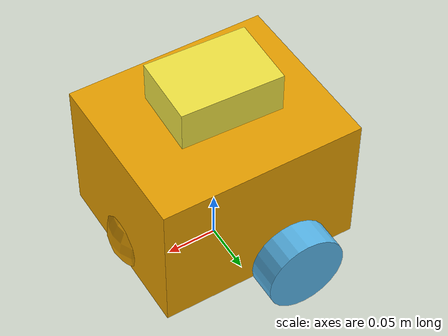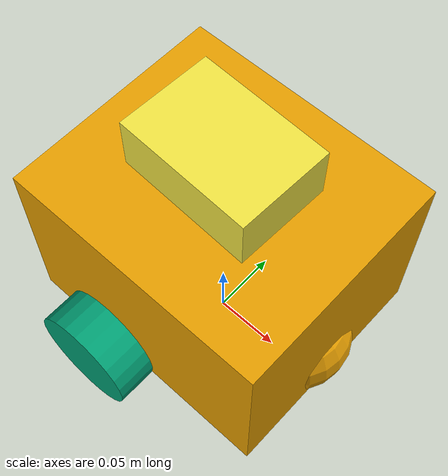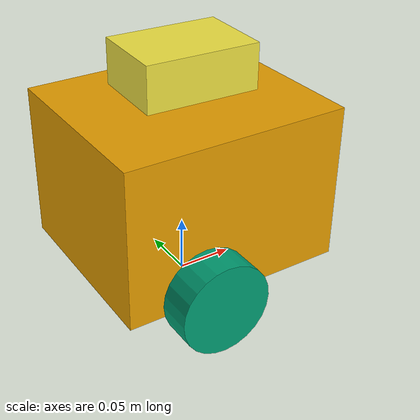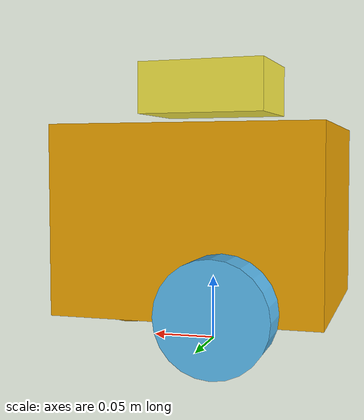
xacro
<?xml version='1.0'?>

<robot name="grunt" xmlns:xacro="http://www.ros.org/wiki/xacro">

  <link name='base_link'>
    <pose>0 0 0.1 0 0 0</pose>

    <visual name='base_link_visual'>
      <origin xyz="0 0 0.1" rpy=" 0 0 0"/>
      <geometry>
        <box size=".2 .17 .14"/>
      </geometry>
    </visual>

    <visual name='caster_front_visual'>
      <origin xyz="0.07 0 0.05" rpy=" 0 0 0"/>
      <geometry>
        <sphere radius="0.04"/>
      </geometry>
    </visual>

  </link>

  <link name="left_wheel">
    <!--origin xyz="0.1 0.13 0.1" rpy="0 1.5707 1.5707"/-->
    <visual name="left_wheel_visual">
      <origin xyz="0 0 0.1" rpy="0 1.5707 1.5707"/>
      <geometry>
        <cylinder radius="0.04" length="0.03"/>
      </geometry>
    </visual>
  </link>

  <link name="right_wheel">
    <!--origin xyz="0.1 -0.13 0.1" rpy="0 1.5707 1.5707"/-->
    <visual name="right_wheel_visual">
      <origin xyz="0 0 0.1" rpy="0 1.5707 1.5707"/>
      <geometry>
        <cylinder radius="0.04" length="0.03"/>
      </geometry>
    </visual>
  </link>

  <joint type="fixed" name="left_wheel_joint">
    <origin xyz="-0.03 0.1 -0.06" rpy="0 0 0"/>
    <!--origin xyz="0.1 0.13 0" rpy="0 1.5707 1.5707"/-->
    <child link="left_wheel"/>
    <parent link="base_link"/>
    <axis xyz="0 1 0" rpy="0 0 0"/>
    <limit effort="10000" velocity="1000"/>
    <joint_properties damping="1.0" friction="1.0"/>
  </joint>

  <joint type="fixed" name="right_wheel_joint">
    <origin xyz="-0.03 -0.1 -0.06" rpy="0 0 0"/>
    <!--origin xyz="0.1 -0.13 0" rpy="0 1.5707 1.5707"/-->
    <child link="right_wheel"/>
    <parent link="base_link"/>
    <axis xyz="0 1 0" rpy="0 0 0"/>
    <limit effort="10000" velocity="1000"/>
    <joint_properties damping="1.0" friction="1.0"/>
  </joint>

  <joint name="hokuyo_joint" type="fixed">
    <axis xyz="0 1 0" />
    <origin xyz="0 0 .1" rpy="0 0 3.1"/>
    <parent link="base_link"/>
    <child link="laser"/>
  </joint>

  <!-- Hokuyo Laser -->
  <link name="laser">

    <visual>
      <origin xyz="0 0 0.1" rpy="0 0 0"/>
      <geometry>
        <box size="0.1 0.07 0.04"/>
      </geometry>
    </visual>
  </link>

</robot>
